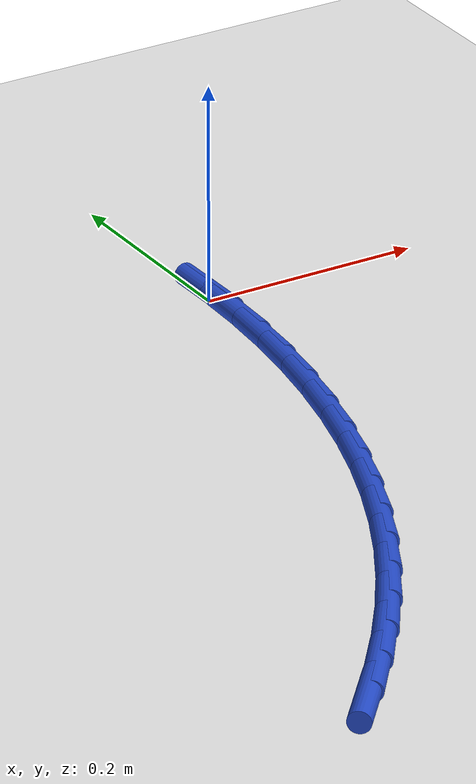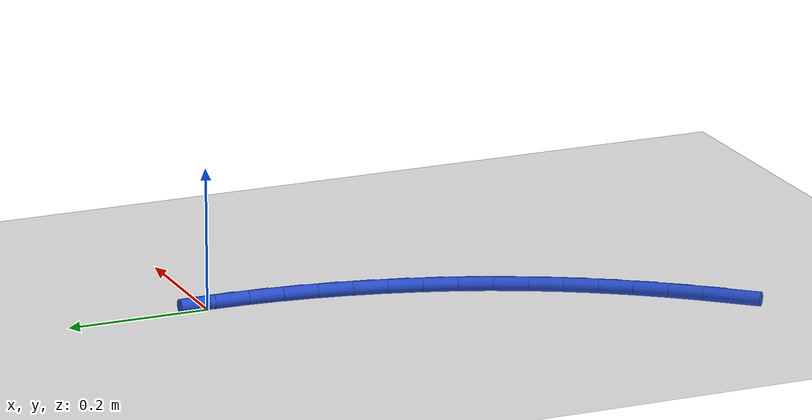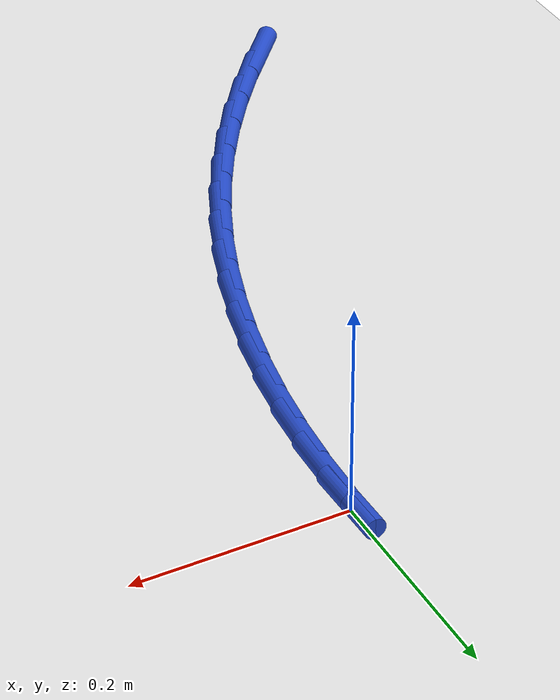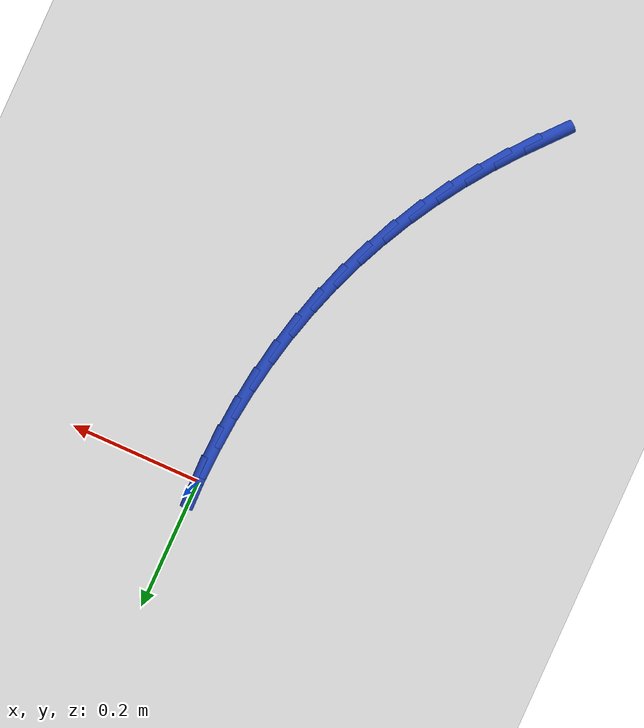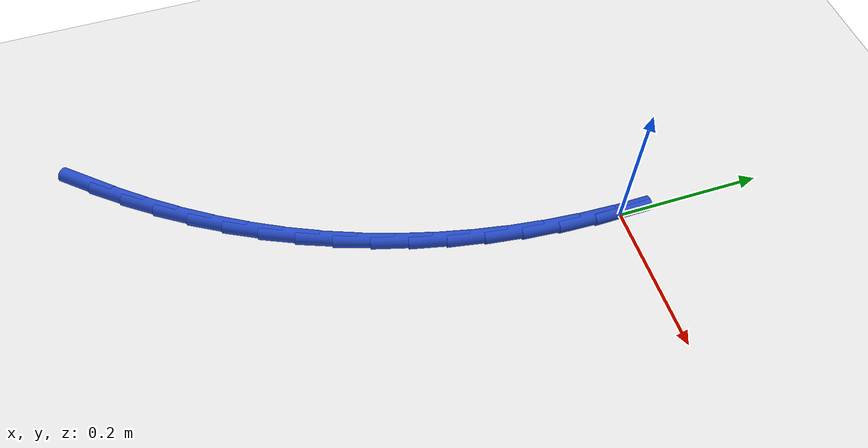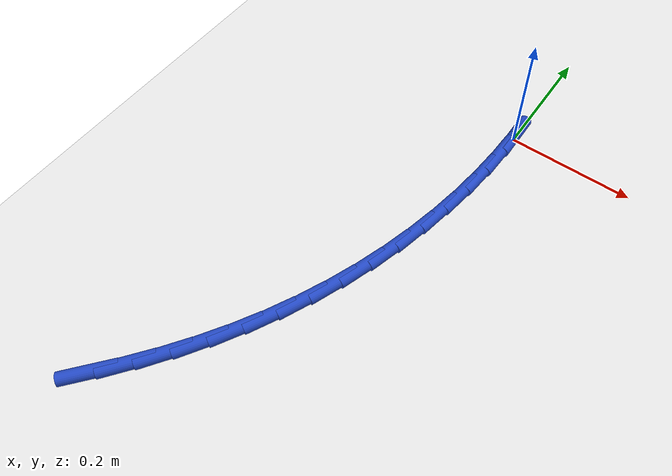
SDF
<sdf version="1.6">
 <world name="default">
  <model name="ground_plane">
   <static>1</static>
   <link name="link">
    <collision name="collision">
     <geometry><plane><normal>0 0 1</normal><size>100 100</size></plane></geometry>
     <surface><friction><ode><mu>100</mu><mu2>50</mu2></ode></friction></surface>
    </collision>
    <visual name="visual">
     <cast_shadows>0</cast_shadows>
     <geometry><plane><normal>0 0 1</normal><size>100 100</size></plane></geometry>
     <material>
      <script><uri>file://media/materials/scripts/gazebo.material</uri><name>Gazebo/WhiteGlow</name></script>
     </material>
    </visual>
   </link>
  </model>
  <model name="line">
   <link name="link_0">
    <pose>-1.5612511283791264e-17 1.3877787807814457e-17 0.01 0 1.57 -1.5564989843207722</pose>
    <collision name="collision">
     <geometry><cylinder><radius>0.01</radius><length>0.08</length></cylinder></geometry>
    </collision>
    <visual name="visual">
     <material>
      <script><name>Gazebo/Blue</name><uri>file://media/materials/scripts/gazebo.material</uri></script>
     </material>
     <geometry><cylinder><radius>0.01</radius><length>0.08</length></cylinder></geometry>
    </visual>
   </link>
   <link name="link_125">
    <pose>-0.25829040660130115 -0.6676785646497668 0.01 0 1.57 0.8598322034591747</pose>
    <collision name="collision">
     <geometry><cylinder><radius>0.01</radius><length>0.08</length></cylinder></geometry>
    </collision>
    <visual name="visual">
     <material>
      <script><name>Gazebo/Blue</name><uri>file://media/materials/scripts/gazebo.material</uri></script>
     </material>
     <geometry><cylinder><radius>0.01</radius><length>0.08</length></cylinder></geometry>
    </visual>
   </link>
   <link name="link_126">
    <pose>-0.22634559029629941 -0.630585466011406 0.01 0 1.57 0.9046894818590046</pose>
    <collision name="collision">
     <geometry><cylinder><radius>0.01</radius><length>0.08</length></cylinder></geometry>
    </collision>
    <visual name="visual">
     <material>
      <script><name>Gazebo/Blue</name><uri>file://media/materials/scripts/gazebo.material</uri></script>
     </material>
     <geometry><cylinder><radius>0.01</radius><length>0.08</length></cylinder></geometry>
    </visual>
   </link>
   <link name="link_127">
    <pose>-0.19618489464962274 -0.5922099973974039 0.01 0 1.57 0.9510998839153554</pose>
    <collision name="collision">
     <geometry><cylinder><radius>0.01</radius><length>0.08</length></cylinder></geometry>
    </collision>
    <visual name="visual">
     <material>
      <script><name>Gazebo/Blue</name><uri>file://media/materials/scripts/gazebo.material</uri></script>
     </material>
     <geometry><cylinder><radius>0.01</radius><length>0.08</length></cylinder></geometry>
    </visual>
   </link>
   <link name="link_128">
    <pose>-0.16791271193667218 -0.5525826239550701 0.01 0 1.57 0.9991241512944646</pose>
    <collision name="collision">
     <geometry><cylinder><radius>0.01</radius><length>0.08</length></cylinder></geometry>
    </collision>
    <visual name="visual">
     <material>
      <script><name>Gazebo/Blue</name><uri>file://media/materials/scripts/gazebo.material</uri></script>
     </material>
     <geometry><cylinder><radius>0.01</radius><length>0.08</length></cylinder></geometry>
    </visual>
   </link>
   <link name="link_129">
    <pose>-0.14163343443284926 -0.5117338108317144 0.01 0 1.57 1.0487993477265423</pose>
    <collision name="collision">
     <geometry><cylinder><radius>0.01</radius><length>0.08</length></cylinder></geometry>
    </collision>
    <visual name="visual">
     <material>
      <script><name>Gazebo/Blue</name><uri>file://media/materials/scripts/gazebo.material</uri></script>
     </material>
     <geometry><cylinder><radius>0.01</radius><length>0.08</length></cylinder></geometry>
    </visual>
   </link>
   <link name="link_130">
    <pose>-0.11745145441355546 -0.4696940231746473 0.01 0 1.57 1.1001317398951556</pose>
    <collision name="collision">
     <geometry><cylinder><radius>0.01</radius><length>0.08</length></cylinder></geometry>
    </collision>
    <visual name="visual">
     <material>
      <script><name>Gazebo/Blue</name><uri>file://media/materials/scripts/gazebo.material</uri></script>
     </material>
     <geometry><cylinder><radius>0.01</radius><length>0.08</length></cylinder></geometry>
    </visual>
   </link>
   <link name="link_131">
    <pose>-0.09547107649344778 -0.42649378586356157 0.01 0 1.57 1.152394841080117</pose>
    <collision name="collision">
     <geometry><cylinder><radius>0.01</radius><length>0.08</length></cylinder></geometry>
    </collision>
    <visual name="visual">
     <material>
      <script><name>Gazebo/Blue</name><uri>file://media/materials/scripts/gazebo.material</uri></script>
     </material>
     <geometry><cylinder><radius>0.01</radius><length>0.08</length></cylinder></geometry>
    </visual>
   </link>
   <link name="link_132">
    <pose>-0.07576803376104908 -0.38218309253098215 0.01 0 1.57 1.2038668468655795</pose>
    <collision name="collision">
     <geometry><cylinder><radius>0.01</radius><length>0.08</length></cylinder></geometry>
    </collision>
    <visual name="visual">
     <material>
      <script><name>Gazebo/Blue</name><uri>file://media/materials/scripts/gazebo.material</uri></script>
     </material>
     <geometry><cylinder><radius>0.01</radius><length>0.08</length></cylinder></geometry>
    </visual>
   </link>
   <link name="link_133">
    <pose>-0.05834852489125843 -0.3368593178385584 0.01 0 1.57 1.254323721691354</pose>
    <collision name="collision">
     <geometry><cylinder><radius>0.01</radius><length>0.08</length></cylinder></geometry>
    </collision>
    <visual name="visual">
     <material>
      <script><name>Gazebo/Blue</name><uri>file://media/materials/scripts/gazebo.material</uri></script>
     </material>
     <geometry><cylinder><radius>0.01</radius><length>0.08</length></cylinder></geometry>
    </visual>
   </link>
   <link name="link_134">
    <pose>-0.04320837237269784 -0.2906269068230052 0.01 0 1.57 1.3038160307461875</pose>
    <collision name="collision">
     <geometry><cylinder><radius>0.01</radius><length>0.08</length></cylinder></geometry>
    </collision>
    <visual name="visual">
     <material>
      <script><name>Gazebo/Blue</name><uri>file://media/materials/scripts/gazebo.material</uri></script>
     </material>
     <geometry><cylinder><radius>0.01</radius><length>0.08</length></cylinder></geometry>
    </visual>
   </link>
   <link name="link_135">
    <pose>-0.030343398693989186 -0.24359030452103672 0.01 0 1.57 1.3524089729817215</pose>
    <collision name="collision">
     <geometry><cylinder><radius>0.01</radius><length>0.08</length></cylinder></geometry>
    </collision>
    <visual name="visual">
     <material>
      <script><name>Gazebo/Blue</name><uri>file://media/materials/scripts/gazebo.material</uri></script>
     </material>
     <geometry><cylinder><radius>0.01</radius><length>0.08</length></cylinder></geometry>
    </visual>
   </link>
   <link name="link_136">
    <pose>-0.019749426343754903 -0.1958539559693693 0.01 0 1.57 1.4001795569872002</pose>
    <collision name="collision">
     <geometry><cylinder><radius>0.01</radius><length>0.08</length></cylinder></geometry>
    </collision>
    <visual name="visual">
     <material>
      <script><name>Gazebo/Blue</name><uri>file://media/materials/scripts/gazebo.material</uri></script>
     </material>
     <geometry><cylinder><radius>0.01</radius><length>0.08</length></cylinder></geometry>
    </visual>
   </link>
   <link name="link_137">
    <pose>-0.011422277810616806 -0.1475223062047171 0.01 0 1.57 1.447214034307837</pose>
    <collision name="collision">
     <geometry><cylinder><radius>0.01</radius><length>0.08</length></cylinder></geometry>
    </collision>
    <visual name="visual">
     <material>
      <script><name>Gazebo/Blue</name><uri>file://media/materials/scripts/gazebo.material</uri></script>
     </material>
     <geometry><cylinder><radius>0.01</radius><length>0.08</length></cylinder></geometry>
    </visual>
   </link>
   <link name="link_138">
    <pose>-0.005357775583196938 -0.09869980026379502 0.01 0 1.57 1.4936056191482963</pose>
    <collision name="collision">
     <geometry><cylinder><radius>0.01</radius><length>0.08</length></cylinder></geometry>
    </collision>
    <visual name="visual">
     <material>
      <script><name>Gazebo/Blue</name><uri>file://media/materials/scripts/gazebo.material</uri></script>
     </material>
     <geometry><cylinder><radius>0.01</radius><length>0.08</length></cylinder></geometry>
    </visual>
   </link>
   <link name="link_139">
    <pose>-0.0015517421501173214 -0.04949088318331786 0.01 0 1.57 1.5394524942607437</pose>
    <collision name="collision">
     <geometry><cylinder><radius>0.01</radius><length>0.08</length></cylinder></geometry>
    </collision>
    <visual name="visual">
     <material>
      <script><name>Gazebo/Blue</name><uri>file://media/materials/scripts/gazebo.material</uri></script>
     </material>
     <geometry><cylinder><radius>0.01</radius><length>0.08</length></cylinder></geometry>
    </visual>
   </link>
   <link name="link_140">
    <pose>-5.204170427930421e-18 1.8041124150158794e-16 0.01 0 1.57 -1.5567365716216872</pose>
    <collision name="collision">
     <geometry><cylinder><radius>0.01</radius><length>0.08</length></cylinder></geometry>
    </collision>
    <visual name="visual">
     <material>
      <script><name>Gazebo/Blue</name><uri>file://media/materials/scripts/gazebo.material</uri></script>
     </material>
     <geometry><cylinder><radius>0.01</radius><length>0.08</length></cylinder></geometry>
    </visual>
   </link>
  </model>
 </world>
</sdf>
